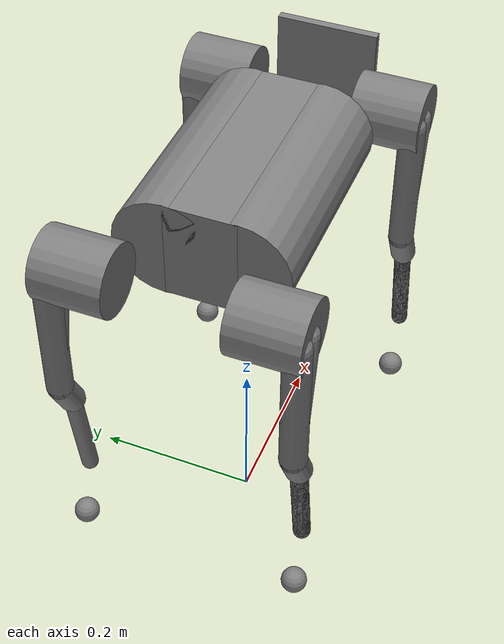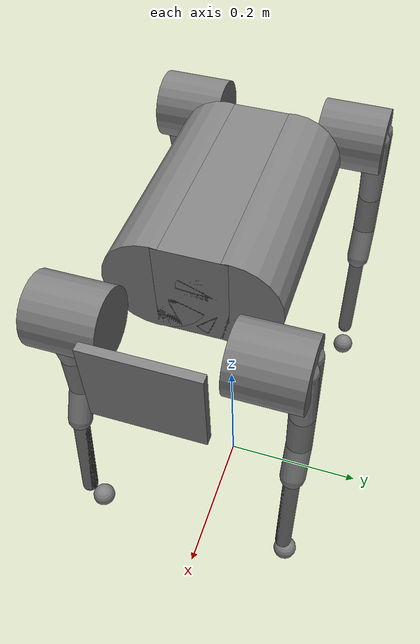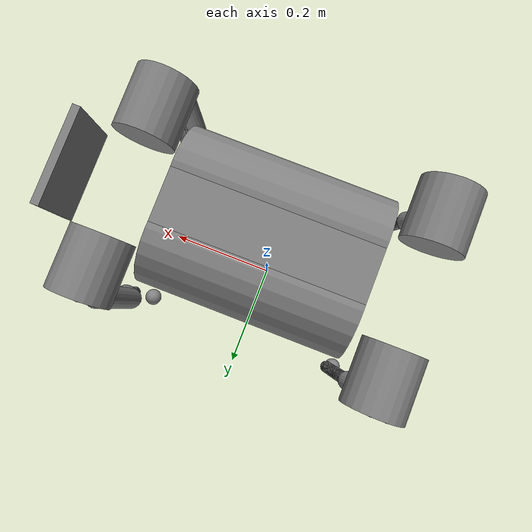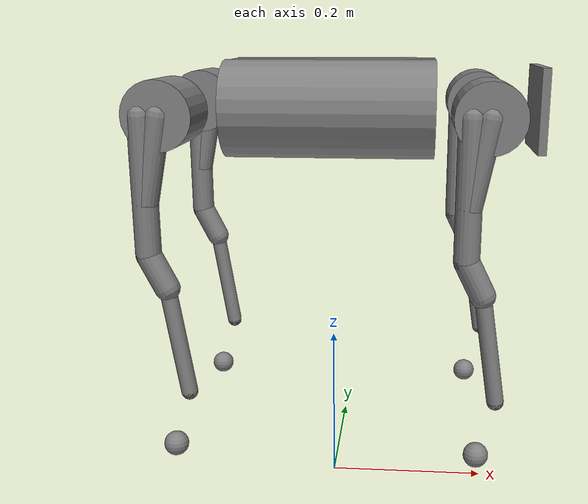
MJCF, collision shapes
<mujoco model="Unitree A1">
  <option gravity="0 0 -9.81"/>
  <compiler angle="radian" meshdir="assets" texturedir="assets"/>

  <option impratio="10" iterations="1" ls_iterations="4" timestep="0.001">
    <flag eulerdamp="disable"/>
  </option>

  <default>
    <default class="a1">
      <geom friction="0.6" margin="0.001" condim="1"/>
      <joint axis="0 1 0" damping="2" armature="0.01" limited="true"/>
      <position kp="50" ctrllimited="true" forcelimited="true" forcerange="-33.5 33.5"/>
      <default class="abduction">
        <joint axis="1 0 0" damping="1" range="-0.802851 0.802851"/>
        <position ctrlrange="-0.802851 0.802851"/>
      </default>
      <default class="hip">
        <joint range="-1.9472 3.28879" ref="-0.9"/>
        <position ctrlrange="-1.9472 3.28879"/>
      </default>
      <default class="knee">
        <joint range="-0.89653 0.883702" ref="1.8"/>
        <position ctrlrange="-0.89653 0.883702"/>
      </default>
      <default class="visual">
        <geom type="mesh" contype="0" conaffinity="0" group="0" material="dark"/>
      </default>
      <default class="collision">
        <geom group="3" type="capsule" contype="0" conaffinity="0" friction="0." />
        <default class="hip_left" >
          <geom contype="0" conaffinity="0" group="3" size="0.04 0.04" quat="1 1 0 0" type="cylinder" pos="0 0.055 0"/>
        </default>
        <default class="hip_right">
          <geom contype="0" conaffinity="0" group="3" size="0.04 0.04" quat="1 1 0 0" type="cylinder" pos="0 -0.055 0"/>
        </default>
        <default class="thigh1">
          <geom contype="0" conaffinity="0" group="3" size="0.015" fromto="-0.02 0 0 -0.02 0 -0.16"/>
        </default>
        <default class="thigh2">
          <geom contype="0" conaffinity="0" group="3" size="0.015" fromto="0 0 0 -0.02 0 -0.1"/>
        </default>
        <default class="thigh3">
          <geom contype="0" conaffinity="0" group="3" size="0.015" fromto="-0.02 0 -0.16 0 0 -0.2"/>
        </default>
        <default class="calf1">
          <geom contype="0" conaffinity="0" group="3" size="0.01" fromto="0 0 0 0.02 0 -0.13"/>
        </default>
        <default class="calf2">
          <geom contype="0" conaffinity="0" group="3" size="0.01" fromto="0.02 0 -0.13 0 0 0."/>
        </default>
        <default class="foot">
          <geom contype="1" conaffinity="1" group="3" type="sphere" size="0.015" pos="0 0 -0.2" solimp="0.015 0.7 0.04 0.5 2" solref="0.02 1"
              condim="3" friction="0.8 0.02 0.01"/>
        </default>
      </default>
    </default>
  </default>

  <asset>
    <material name="dark" specular="0" shininess="0.25" rgba="0.2 0.2 0.2 1"/>
    <texture type="2d" name="trunk_A1" file="trunk_A1.png"/>
    <material name="carbonfibre" texture="trunk_A1" specular="0" shininess="0.25"/>

    <mesh class="a1" file="calf.obj"/>
    <mesh class="a1" file="hip.obj"/>
    <mesh class="a1" file="thigh.obj"/>
    <mesh class="a1" file="thigh_mirror.obj"/>
    <mesh class="a1" file="trunk.obj"/>
  </asset>

  <worldbody>
    <body name="trunk" pos="0.0 0.0 0.5" quat="1 0 0 0" childclass="a1">
      <light pos="0 0 5" mode="trackcom" diffuse="0.8 0.8 0.8"/>
      <site name="torso"/>
      <freejoint/>
      <inertial mass="4.713" pos="0 0.0041 -0.0005"
          fullinertia="0.0158533 0.0377999 0.0456542 -3.66e-05 -6.11e-05 -2.75e-05"/>
      <geom name="trunk_0_visu" class="visual" mesh="trunk" material="carbonfibre"/>
      <geom name="trunk_01" class="collision" size="0.125 0.04 0.057" type="box"/>
      <geom name="trunk_02" class="collision" quat="1 0 1 0" pos="0 -0.04 0" size="0.058 0.125" type="cylinder"/>
      <geom name="trunk_03" class="collision" quat="1 0 1 0" pos="0 +0.04 0" size="0.058 0.125" type="cylinder"/>
      <geom name="trunk_04" class="collision" pos="0.25 0 0" size="0.005 0.06 0.05" type="box"/>
      <body name="FR_hip" pos="0.183 -0.047 0">
        <inertial mass="0.696" pos="-0.003311 -0.000635 3.1e-05"
            quat="0.507528 0.506268 0.491507 0.494499"
            diaginertia="0.000807752 0.00055293 0.000468983"/>
        <joint class="abduction" name="FR_hip_joint"/>
        <geom name="FR_hip_visu" class="visual" mesh="hip" quat="0 1 0 0"/>
        <geom name="FR_hip" class="hip_right"/>
        <body name="FR_thigh" pos="0 -0.08505 0">
          <inertial mass="1.013" pos="-0.003237 0.022327 -0.027326"
              quat="0.999125 -0.00256393 -0.0409531 -0.00806091"
              diaginertia="0.00555739 0.00513936 0.00133944"/>
          <joint class="hip" name="FR_thigh_joint"/>
          <geom name="FR_thigh_mirror_visu" class="visual" mesh="thigh_mirror"/>
          <geom name="FR_thigh1" class="thigh1"/>
          <geom name="FR_thigh2" class="thigh2"/>
          <geom name="FR_thigh3" class="thigh3"/>
          <body name="FR_calf" pos="0 0 -0.2">
            <inertial mass="0.226" pos="0.00472659 0 -0.131975"
                quat="0.706886 0.017653 0.017653 0.706886"
                diaginertia="0.00340344 0.00339393 3.54834e-05"/>
            <joint class="knee" name="FR_calf_joint"/>
            <geom name="FR_calf_visu" class="visual" mesh="calf"/>
            <geom name="FR_calf1" class="calf1"/>
            <geom name="FR_calf2" class="calf2"/>
            <geom name="FR" class="foot"/>
            <site name="FR" pos="0 0 -0.2" type="sphere" size=".015"/>
          </body>
        </body>
      </body>
      <body name="FL_hip" pos="0.183 0.047 0">
        <inertial mass="0.696" pos="-0.003311 0.000635 3.1e-05"
            quat="0.494499 0.491507 0.506268 0.507528"
            diaginertia="0.000807752 0.00055293 0.000468983"/>
        <joint class="abduction" name="FL_hip_joint"/>
        <geom name="FL_hip_visu" class="visual" mesh="hip"/>
        <geom name="FL_hip" class="hip_left"/>
        <geom name="FL_hip_1" class="collision" size="0.04 0.04" pos="0 0.055 0" quat="1 1 0 0" type="cylinder"/>
        <body name="FL_thigh" pos="0 0.08505 0">
          <inertial mass="1.013" pos="-0.003237 -0.022327 -0.027326"
              quat="0.999125 0.00256393 -0.0409531 0.00806091"
              diaginertia="0.00555739 0.00513936 0.00133944"/>
          <joint class="hip" name="FL_thigh_joint"/>
          <geom name="FL_thigh_visu" class="visual" mesh="thigh"/>
          <geom name="FL_thigh1" class="thigh1"/>
          <geom name="FL_thigh2" class="thigh2"/>
          <geom name="FL_thigh3" class="thigh3"/>
          <body name="FL_calf" pos="0 0 -0.2">
            <inertial mass="0.226" pos="0.00472659 0 -0.131975"
                quat="0.706886 0.017653 0.017653 0.706886"
                diaginertia="0.00340344 0.00339393 3.54834e-05"/>
            <joint class="knee" name="FL_calf_joint"/>
            <geom name="FL_calf_visu" class="visual" mesh="calf"/>
            <geom name="FL_calf1" class="calf1"/>
            <geom name="FL_calf2" class="calf2"/>
            <geom name="FL" class="foot"/>
            <site name="FL" pos="0 0 -0.2" type="sphere" size=".015"/>
          </body>
        </body>
      </body>
      <body name="HR_hip" pos="-0.183 -0.047 0">
        <inertial mass="0.696" pos="0.003311 -0.000635 3.1e-05"
            quat="0.491507 0.494499 0.507528 0.506268"
            diaginertia="0.000807752 0.00055293 0.000468983"/>
        <joint class="abduction" name="RR_hip_joint"/>
        <geom name="HR_hip_visu" class="visual" quat="0 0 0 -1" mesh="hip"/>
        <geom name="HR_hip" class="hip_right"/>
        <body name="RR_thigh" pos="0 -0.08505 0">
          <inertial mass="1.013" pos="-0.003237 0.022327 -0.027326"
              quat="0.999125 -0.00256393 -0.0409531 -0.00806091"
              diaginertia="0.00555739 0.00513936 0.00133944"/>
          <joint class="hip" name="RR_thigh_joint"/>
          <geom name="HR_thigh_mirror_visu"  class="visual" mesh="thigh_mirror"/>
          <geom name="HR_thigh1" class="thigh1"/>
          <geom name="HR_thigh2" class="thigh2"/>
          <geom name="HR_thigh3" class="thigh3"/>
          <body name="RR_calf" pos="0 0 -0.2">
            <inertial mass="0.226" pos="0.00472659 0 -0.131975"
                quat="0.706886 0.017653 0.017653 0.706886"
                diaginertia="0.00340344 0.00339393 3.54834e-05"/>
            <joint class="knee" name="RR_calf_joint"/>
            <geom name="HR_calf_visu" class="visual" mesh="calf"/>
            <geom name="HR_calf1" class="calf1"/>
            <geom name="HR_calf2" class="calf2"/>
            <geom name="HR" class="foot"/>
            <site name="RR" pos="0 0 -0.2" type="sphere" size=".015"/>
          </body>
        </body>
      </body>
      <body name="HL_hip" pos="-0.183 0.047 0">
        <inertial mass="0.696" pos="0.003311 0.000635 3.1e-05"
            quat="0.506268 0.507528 0.494499 0.491507"
            diaginertia="0.000807752 0.00055293 0.000468983"/>
        <joint class="abduction" name="RL_hip_joint"/>
        <geom name="HL_hip_visu" class="visual" quat="0 0 1 0" mesh="hip"/>
        <geom name="HL_hip" class="hip_left"/>
        <body name="RL_thigh" pos="0 0.08505 0">
          <inertial mass="1.013" pos="-0.003237 -0.022327 -0.027326"
              quat="0.999125 0.00256393 -0.0409531 0.00806091"
              diaginertia="0.00555739 0.00513936 0.00133944"/>
          <joint class="hip" name="RL_thigh_joint"/>
          <geom name="HL_thigh_visu" class="visual" mesh="thigh"/>
          <geom name="HL_thigh1" class="thigh1"/>
          <geom name="HL_thigh2" class="thigh2"/>
          <geom name="HL_thigh3" class="thigh3"/>
          <body name="RL_calf" pos="0 0 -0.2">
            <inertial mass="0.226" pos="0.00472659 0 -0.131975"
                quat="0.706886 0.017653 0.017653 0.706886"
                diaginertia="0.00340344 0.00339393 3.54834e-05"/>
            <joint class="knee" name="RL_calf_joint"/>
            <geom name="HL_calf_visu" class="visual" mesh="calf"/>
            <geom name="HL_calf1" class="calf1"/>
            <geom name="HL_calf2" class="calf2"/>
            <geom name="HL" class="foot"/>
            <site name="RL" pos="0 0 -0.2" type="sphere" size=".015"/>
          </body>
        </body>
      </body>
    </body>
  </worldbody>

</mujoco>
